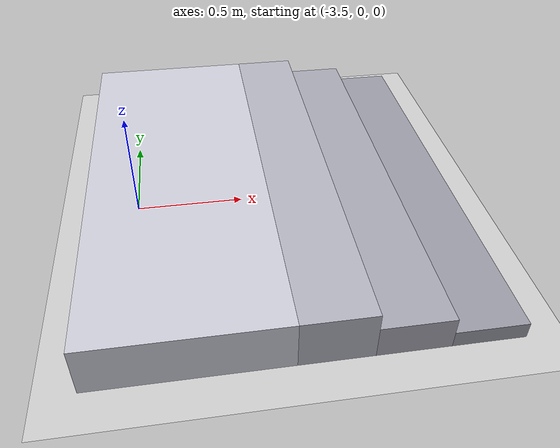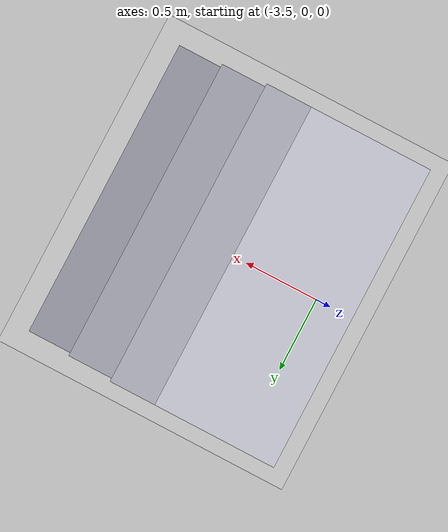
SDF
<?xml version="1.0" ?>
<!-- Same as staircase.world with 7.5 cm steps. -->
<sdf version="1.5">
  <world name="default">
    <include><uri>model://sun</uri></include>
    <include><uri>model://ground_plane</uri></include>
    <model name="step_1">
      <static>true</static>
      <pose>-2.150 0 0.0375 0 0 0</pose>
      <link name="link">
        <collision name="collision"><geometry><box><size>0.30 2.0 0.0750</size></box></geometry></collision>
        <visual name="visual"><geometry><box><size>0.30 2.0 0.0750</size></box></geometry>
          <material><ambient>0.6 0.6 0.65 1</ambient><diffuse>0.6 0.6 0.65 1</diffuse></material></visual>
      </link>
    </model>
    <model name="step_2">
      <static>true</static>
      <pose>-2.450 0 0.0750 0 0 0</pose>
      <link name="link">
        <collision name="collision"><geometry><box><size>0.30 2.0 0.1500</size></box></geometry></collision>
        <visual name="visual"><geometry><box><size>0.30 2.0 0.1500</size></box></geometry>
          <material><ambient>0.65 0.65 0.7000000000000001 1</ambient><diffuse>0.65 0.65 0.7000000000000001 1</diffuse></material></visual>
      </link>
    </model>
    <model name="step_3">
      <static>true</static>
      <pose>-2.750 0 0.1125 0 0 0</pose>
      <link name="link">
        <collision name="collision"><geometry><box><size>0.30 2.0 0.2250</size></box></geometry></collision>
        <visual name="visual"><geometry><box><size>0.30 2.0 0.2250</size></box></geometry>
          <material><ambient>0.7 0.7 0.75 1</ambient><diffuse>0.7 0.7 0.75 1</diffuse></material></visual>
      </link>
    </model>
    <model name="landing">
      <static>true</static>
      <pose>-3.300 0 0.1125 0 0 0</pose>
      <link name="link">
        <collision name="collision"><geometry><box><size>0.80 2.0 0.2250</size></box></geometry></collision>
        <visual name="visual"><geometry><box><size>0.80 2.0 0.2250</size></box></geometry>
          <material><ambient>0.8 0.8 0.85 1</ambient><diffuse>0.8 0.8 0.85 1</diffuse></material></visual>
      </link>
    </model>
  </world>
</sdf>
